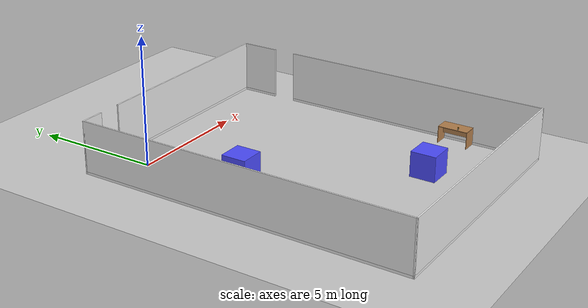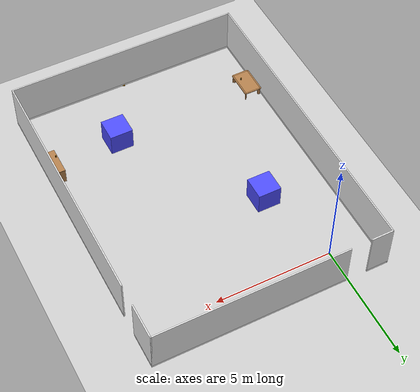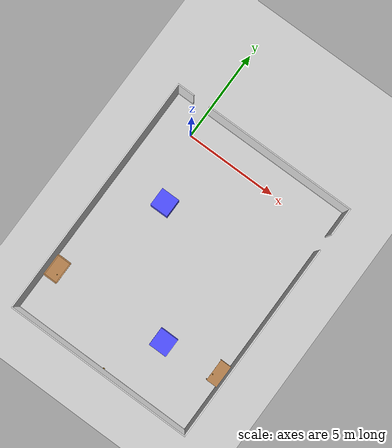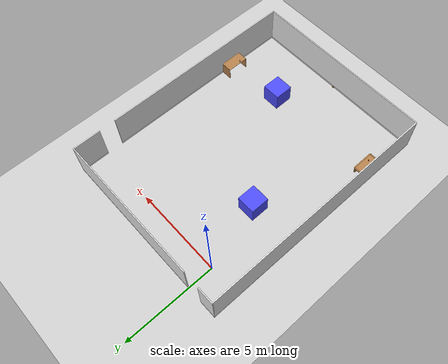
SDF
<sdf version="1.6">
 <world name="default">
  <model name="ground_plane">
   <static>1</static>
   <link name="link">
    <collision name="collision">
     <geometry><plane><normal>0 0 1</normal><size>100 100</size></plane></geometry>
     <surface><friction><ode><mu>100</mu><mu2>50</mu2></ode></friction></surface>
    </collision>
    <visual name="visual">
     <cast_shadows>0</cast_shadows>
     <geometry><plane><normal>0 0 1</normal><size>100 100</size></plane></geometry>
     <material>
      <script><uri>file://media/materials/scripts/gazebo.material</uri><name>Gazebo/Grey</name></script>
     </material>
    </visual>
   </link>
  </model>
  <model name="full_outside_wall">
   <link name="link">
    <inertial>
     <mass>50</mass>
     <inertia><ixx>1</ixx><ixy>0</ixy><ixz>0</ixz><iyy>1</iyy><iyz>0</iyz><izz>1</izz></inertia>
    </inertial>
    <visual name="x00_13y00_bottom_frame">
     <pose>5.0375 -0.0275 0.05 0 -0 0</pose>
     <geometry><box><size>10.185 0.055 0.1</size></box></geometry>
     <material>
      <script><uri>model://base_materials/color/scripts</uri><name>hsr_color/white</name></script>
     </material>
    </visual>
    <collision name="x00_13y00_collision_bottom_frame">
     <pose>5.0375 -0.0275 0.05 0 -0 0</pose>
     <geometry><box><size>10.185 0.055 0.1</size></box></geometry>
    </collision>
    <visual name="wall_x00_13y00">
     <pose>5.0375 -0.0275 1.095 0 -0 0</pose>
     <geometry><box><size>10.185 0.055 1.99</size></box></geometry>
     <material>
      <script>
       <uri>model://base_materials/wall/scripts</uri>
       <uri>model://base_materials/wall/textures</uri>
       <name>wall/white_noise</name>
      </script>
     </material>
    </visual>
    <collision name="wall_x00_13y00">
     <pose>5.0375 -0.002 1.095 0 -0 0</pose>
     <geometry><box><size>10.08 0.055 1.99</size></box></geometry>
    </collision>
    <visual name="x00y00_15_bottom_frame">
     <pose>-0.0275 6.59 0.05 0 -0 0</pose>
     <geometry><box><size>0.055 13.29 0.1</size></box></geometry>
     <material>
      <script><uri>model://base_materials/color/scripts</uri><name>hsr_color/white</name></script>
     </material>
    </visual>
    <collision name="x00y00_15_collision_bottom_frame">
     <pose>-0.0275 6.59 0.05 0 -0 0</pose>
     <geometry><box><size>0.055 13.29 0.1</size></box></geometry>
    </collision>
    <visual name="wall_x00y00_15">
     <pose>-0.0275 6.59 1.095 0 -0 0</pose>
     <geometry><box><size>0.055 13.29 1.99</size></box></geometry>
     <material>
      <script>
       <uri>model://base_materials/wall/scripts</uri>
       <uri>model://base_materials/wall/textures</uri>
       <name>wall/white_noise</name>
      </script>
     </material>
    </visual>
    <collision name="wall_x00y00_x00y15">
     <pose>-0.002 6.59 1.095 0 -0 0</pose>
     <geometry><box><size>0.002 13.29 1.99</size></box></geometry>
    </collision>
    <visual name="x13y00_12_bottom_frame">
     <pose>10.1025 5.3725 0.05 0 -0 0</pose>
     <geometry><box><size>0.055 10.855 0.1</size></box></geometry>
     <material>
      <script><uri>model://base_materials/color/scripts</uri><name>hsr_color/white</name></script>
     </material>
    </visual>
    <collision name="x13y00_12_collision_bottom_frame">
     <pose>10.1025 5.3725 0.05 0 -0 0</pose>
     <geometry><box><size>0.055 10.855 0.1</size></box></geometry>
    </collision>
    <visual name="wall_x13y00_12">
     <pose>10.1025 5.3725 1.095 0 -0 0</pose>
     <geometry><box><size>0.055 10.855 1.99</size></box></geometry>
     <material>
      <script>
       <uri>model://base_materials/wall/scripts</uri>
       <uri>model://base_materials/wall/textures</uri>
       <name>wall/white_noise</name>
      </script>
     </material>
    </visual>
    <collision name="wall_x13y00_12">
     <pose>10.1025 5.3725 1.095 0 -0 0</pose>
     <geometry><box><size>0.055 10.855 1.99</size></box></geometry>
    </collision>
    <visual name="x13y14_16_bottom_frame">
     <pose>10.1025 12.4675 0.05 0 -0 0</pose>
     <geometry><box><size>0.055 1.535 0.1</size></box></geometry>
     <material>
      <script><uri>model://base_materials/color/scripts</uri><name>hsr_color/white</name></script>
     </material>
    </visual>
    <collision name="x13y14_16_collision_bottom_frame">
     <pose>10.1025 12.4675 0.05 0 -0 0</pose>
     <geometry><box><size>0.055 1.535 0.1</size></box></geometry>
    </collision>
    <visual name="wall_x13y14_x13y16">
     <pose>10.1025 12.4675 1.095 0 -0 0</pose>
     <geometry><box><size>0.055 1.535 1.99</size></box></geometry>
     <material>
      <script>
       <uri>model://base_materials/wall/scripts</uri>
       <uri>model://base_materials/wall/textures</uri>
       <name>wall/white_noise</name>
      </script>
     </material>
    </visual>
    <collision name="wall_x13y14_x13y16">
     <pose>10.1025 12.4675 1.095 0 -0 0</pose>
     <geometry><box><size>0.055 1.535 1.99</size></box></geometry>
    </collision>
    <visual name="x00_01y16_bottom_frame">
     <pose>0.4225 13.2075 0.05 0 -0 0</pose>
     <geometry><box><size>0.955 0.055 0.1</size></box></geometry>
     <material>
      <script><uri>model://base_materials/color/scripts</uri><name>hsr_color/white</name></script>
     </material>
    </visual>
    <collision name="x00_01y16_collision_bottom_frame">
     <pose>0.4225 13.2075 0.05 0 -0 0</pose>
     <geometry><box><size>0.955 0.055 0.1</size></box></geometry>
    </collision>
    <visual name="wall_x00_01y16">
     <pose>0.4225 13.2075 1.095 0 -0 0</pose>
     <geometry><box><size>0.955 0.055 1.99</size></box></geometry>
     <material>
      <script>
       <uri>model://base_materials/wall/scripts</uri>
       <uri>model://base_materials/wall/textures</uri>
       <name>wall/white_noise</name>
      </script>
     </material>
    </visual>
    <collision name="wall_x00_x01y16">
     <pose>0.4225 13.2075 1.095 0 -0 0</pose>
     <geometry><box><size>0.955 0.055 1.99</size></box></geometry>
    </collision>
    <visual name="x03_13y16_bottom_frame">
     <pose>5.965 13.2075 0.05 0 -0 0</pose>
     <geometry><box><size>8.33 0.05 0.1</size></box></geometry>
     <material>
      <script><uri>model://base_materials/color/scripts</uri><name>hsr_color/white</name></script>
     </material>
    </visual>
    <collision name="x03_13y16_collision_bottom_frame">
     <pose>5.965 13.2075 0.05 0 -0 0</pose>
     <geometry><box><size>8.33 0.05 0.1</size></box></geometry>
    </collision>
    <visual name="wall_x03_13y16">
     <pose>5.965 13.2075 1.095 0 -0 0</pose>
     <geometry><box><size>8.33 0.055 1.99</size></box></geometry>
     <material>
      <script>
       <uri>model://base_materials/wall/scripts</uri>
       <uri>model://base_materials/wall/textures</uri>
       <name>wall/white_noise</name>
      </script>
     </material>
    </visual>
    <collision name="wall_x03_13y16">
     <pose>5.965 13.2075 1.095 0 -0 0</pose>
     <geometry><box><size>8.33 0.055 1.99</size></box></geometry>
    </collision>
    <velocity_decay><linear>0</linear><angular>0</angular></velocity_decay>
   </link>
   <static>1</static>
   <pose>-1.74055 -11.8334 0 0 -0 0</pose>
  </model>
  <model name="static_box_3">
   <link name="link">
    <inertial>
     <mass>100</mass>
     <inertia>
      <ixx>0.166667</ixx>
      <ixy>0</ixy>
      <ixz>0</ixz>
      <iyy>0.166667</iyy>
      <iyz>0</iyz>
      <izz>0.166667</izz>
     </inertia>
    </inertial>
    <visual name="visual">
     <geometry><box><size>1 1 1</size></box></geometry>
     <material>
      <script><name>Gazebo/Grey</name><uri>file://media/materials/scripts/gazebo.material</uri></script>
      <ambient>0.3 0.3 1 1</ambient>
      <diffuse>0.7 0.7 0.7 1</diffuse>
      <specular>0.01 0.01 0.01 1</specular>
      <emissive>0 0 0 1</emissive>
      <shader type="vertex"><normal_map>__default__</normal_map></shader>
     </material>
    </visual>
    <collision name="collision">
     <geometry><box><size>1 1 1</size></box></geometry>
     <surface>
      <friction>
       <ode><mu>1</mu><mu2>1</mu2><fdir1>0 0 0</fdir1><slip1>0</slip1><slip2>0</slip2></ode>
       <torsional>
        <coefficient>1</coefficient>
        <patch_radius>0</patch_radius>
        <surface_radius>0</surface_radius>
        <use_patch_radius>1</use_patch_radius>
        <ode><slip>0</slip></ode>
       </torsional>
      </friction>
      <bounce><restitution_coefficient>0</restitution_coefficient><threshold>1e+06</threshold></bounce>
      <contact>
       <collide_without_contact>0</collide_without_contact>
       <collide_without_contact_bitmask>1</collide_without_contact_bitmask>
       <collide_bitmask>1</collide_bitmask>
       <ode>
        <soft_cfm>0</soft_cfm>
        <soft_erp>0.2</soft_erp>
        <kp>1e+13</kp>
        <kd>1</kd>
        <max_vel>0.01</max_vel>
        <min_depth>0</min_depth>
       </ode>
       <bullet>
        <split_impulse>1</split_impulse>
        <split_impulse_penetration_threshold>-0.01</split_impulse_penetration_threshold>
        <soft_cfm>0</soft_cfm>
        <soft_erp>0.2</soft_erp>
        <kp>1e+13</kp>
        <kd>1</kd>
       </bullet>
      </contact>
     </surface>
    </collision>
   </link>
   <static>0</static>
   <pose>1.00497 -3.51707 0.499996 -5e-06 -6e-06 0.0017</pose>
  </model>
  <model name="static_box_4">
   <link name="link">
    <inertial>
     <mass>100</mass>
     <inertia>
      <ixx>0.166667</ixx>
      <ixy>0</ixy>
      <ixz>0</ixz>
      <iyy>0.166667</iyy>
      <iyz>0</iyz>
      <izz>0.166667</izz>
     </inertia>
    </inertial>
    <visual name="visual">
     <geometry><box><size>1 1 1</size></box></geometry>
     <material>
      <script><name>Gazebo/Grey</name><uri>file://media/materials/scripts/gazebo.material</uri></script>
      <ambient>0.3 0.3 1 1</ambient>
      <diffuse>0.7 0.7 0.7 1</diffuse>
      <specular>0.01 0.01 0.01 1</specular>
      <emissive>0 0 0 1</emissive>
      <shader type="vertex"><normal_map>__default__</normal_map></shader>
     </material>
    </visual>
    <collision name="collision">
     <geometry><box><size>1 1 1</size></box></geometry>
     <surface>
      <friction>
       <ode><mu>1</mu><mu2>1</mu2><fdir1>0 0 0</fdir1><slip1>0</slip1><slip2>0</slip2></ode>
       <torsional>
        <coefficient>1</coefficient>
        <patch_radius>0</patch_radius>
        <surface_radius>0</surface_radius>
        <use_patch_radius>1</use_patch_radius>
        <ode><slip>0</slip></ode>
       </torsional>
      </friction>
      <bounce><restitution_coefficient>0</restitution_coefficient><threshold>1e+06</threshold></bounce>
      <contact>
       <collide_without_contact>0</collide_without_contact>
       <collide_without_contact_bitmask>1</collide_without_contact_bitmask>
       <collide_bitmask>1</collide_bitmask>
       <ode>
        <soft_cfm>0</soft_cfm>
        <soft_erp>0.2</soft_erp>
        <kp>1e+13</kp>
        <kd>1</kd>
        <max_vel>0.01</max_vel>
        <min_depth>0</min_depth>
       </ode>
       <bullet>
        <split_impulse>1</split_impulse>
        <split_impulse_penetration_threshold>-0.01</split_impulse_penetration_threshold>
        <soft_cfm>0</soft_cfm>
        <soft_erp>0.2</soft_erp>
        <kp>1e+13</kp>
        <kd>1</kd>
       </bullet>
      </contact>
     </surface>
    </collision>
   </link>
   <static>0</static>
   <pose>4.98871 -8.99637 0.499993 -4e-06 1e-05 0.001363</pose>
  </model>
  <model name="office_desk">
   <link name="link">
    <inertial>
     <mass>10</mass>
     <inertia><ixx>1</ixx><ixy>0</ixy><ixz>0</ixz><iyy>1</iyy><iyz>0</iyz><izz>1</izz></inertia>
    </inertial>
    <visual name="top_board">
     <pose>-0.3 0.6 0.69 0 -0 0</pose>
     <geometry><box><size>0.6 1.2 0.02</size></box></geometry>
     <material>
      <script>
       <uri>model://base_materials/wood/scripts/wood.material</uri>
       <name>base_materials/dark_wood</name>
      </script>
     </material>
    </visual>
    <collision name="collision_top_board">
     <pose>-0.3 0.6 0.69 0 -0 0</pose>
     <geometry><box><size>0.6 1.2 0.02</size></box></geometry>
    </collision>
    <visual name="left_board">
     <pose>-0.3 0.01 0.34 0 -0 0</pose>
     <geometry><box><size>0.6 0.02 0.68</size></box></geometry>
     <material>
      <script>
       <uri>model://base_materials/wood/scripts/wood.material</uri>
       <name>base_materials/dark_wood</name>
      </script>
     </material>
    </visual>
    <collision name="collision_left_board">
     <pose>-0.3 0.01 0.34 0 -0 0</pose>
     <geometry><box><size>0.6 0.02 0.68</size></box></geometry>
    </collision>
    <visual name="right_board">
     <pose>-0.3 1.19 0.34 0 -0 0</pose>
     <geometry><box><size>0.6 0.02 0.68</size></box></geometry>
     <material>
      <script>
       <uri>model://base_materials/wood/scripts/wood.material</uri>
       <name>base_materials/dark_wood</name>
      </script>
     </material>
    </visual>
    <collision name="collision_right_board">
     <pose>-0.3 1.19 0.34 0 -0 0</pose>
     <geometry><box><size>0.6 0.02 0.68</size></box></geometry>
    </collision>
    <visual name="center_board">
     <pose>-0.14 0.6 0.49 0 -0 0</pose>
     <geometry><box><size>0.02 1.16 0.4</size></box></geometry>
     <material>
      <script>
       <uri>model://base_materials/wood/scripts/wood.material</uri>
       <name>base_materials/dark_wood</name>
      </script>
     </material>
    </visual>
    <collision name="ollision_center_board">
     <pose>-0.14 0.6 0.49 0 -0 0</pose>
     <geometry><box><size>0.02 1.16 0.4</size></box></geometry>
    </collision>
    <velocity_decay><linear>0</linear><angular>0</angular></velocity_decay>
   </link>
   <static>1</static>
   <pose>8.34403 -9.23136 0 0 -0 0</pose>
  </model>
  <model name="bottle_clone_0">
   <link name="link">
    <inertial>
     <mass>0.05</mass>
     <inertia><ixx>0.00058</ixx><ixy>0</ixy><ixz>0</ixz><iyy>0.00058</iyy><iyz>0</iyz><izz>0.00016</izz></inertia>
    </inertial>
    <visual name="top">
     <pose>0 0 0.0555 0 -0 0</pose>
     <geometry><cylinder><radius>0.019</radius><length>0.016</length></cylinder></geometry>
     <material>
      <ambient>1 0.647 0 1</ambient>
      <diffuse>0.5 0.3235 0 1</diffuse>
      <specular>0.1 0.1 0.1 1</specular>
      <emissive>0 0 0 0</emissive>
     </material>
    </visual>
    <collision name="collision_top">
     <pose>0 0 0.0555 0 -0 0</pose>
     <geometry><cylinder><radius>0.019</radius><length>0.016</length></cylinder></geometry>
     <surface>
      <bounce><restitution_coefficient>0.2</restitution_coefficient><threshold>0</threshold></bounce>
      <contact><ode><kp>10000</kp><max_vel>10</max_vel></ode></contact>
     </surface>
    </collision>
    <visual name="bottom">
     <geometry><cylinder><radius>0.0245</radius><length>0.095</length></cylinder></geometry>
     <material>
      <ambient>1 0.7 0.3 1</ambient>
      <diffuse>0.5 0.3235 0 1</diffuse>
      <specular>0.1 0.1 0.1 1</specular>
      <emissive>0 0 0 0</emissive>
     </material>
    </visual>
    <collision name="collision_bottom">
     <geometry><cylinder><radius>0.0245</radius><length>0.095</length></cylinder></geometry>
     <surface>
      <bounce><restitution_coefficient>0.2</restitution_coefficient><threshold>0</threshold></bounce>
      <contact><ode><kp>100000</kp><max_vel>10</max_vel></ode></contact>
     </surface>
    </collision>
    <velocity_decay><linear>0</linear><angular>0</angular></velocity_decay>
    <visual name="marker_4000">
     <pose>0.0245 0 0 0 1.57 3.141</pose>
     <geometry><box><size>0.045 0.045 0.0001</size></box></geometry>
     <material>
      <script>
       <uri>model://marker/4000/scripts</uri>
       <uri>model://marker/4000/textures</uri>
       <name>Marker/4000</name>
      </script>
     </material>
    </visual>
   </link>
   <static>0</static>
   <pose>7.81942 -8.83237 0.7475 2e-06 -7e-06 3.05069</pose>
  </model>
  <model name="bottle_clone_1">
   <link name="link">
    <inertial>
     <mass>0.05</mass>
     <inertia><ixx>0.00058</ixx><ixy>0</ixy><ixz>0</ixz><iyy>0.00058</iyy><iyz>0</iyz><izz>0.00016</izz></inertia>
    </inertial>
    <visual name="top">
     <pose>0 0 0.0555 0 -0 0</pose>
     <geometry><cylinder><radius>0.019</radius><length>0.016</length></cylinder></geometry>
     <material>
      <ambient>1 0.647 0 1</ambient>
      <diffuse>0.5 0.3235 0 1</diffuse>
      <specular>0.1 0.1 0.1 1</specular>
      <emissive>0 0 0 0</emissive>
     </material>
    </visual>
    <collision name="collision_top">
     <pose>0 0 0.0555 0 -0 0</pose>
     <geometry><cylinder><radius>0.019</radius><length>0.016</length></cylinder></geometry>
     <surface>
      <bounce><restitution_coefficient>0.2</restitution_coefficient><threshold>0</threshold></bounce>
      <contact><ode><kp>10000</kp><max_vel>10</max_vel></ode></contact>
     </surface>
    </collision>
    <visual name="bottom">
     <geometry><cylinder><radius>0.0245</radius><length>0.095</length></cylinder></geometry>
     <material>
      <ambient>1 0.7 0.3 1</ambient>
      <diffuse>0.5 0.3235 0 1</diffuse>
      <specular>0.1 0.1 0.1 1</specular>
      <emissive>0 0 0 0</emissive>
     </material>
    </visual>
    <collision name="collision_bottom">
     <geometry><cylinder><radius>0.0245</radius><length>0.095</length></cylinder></geometry>
     <surface>
      <bounce><restitution_coefficient>0.2</restitution_coefficient><threshold>0</threshold></bounce>
      <contact><ode><kp>100000</kp><max_vel>10</max_vel></ode></contact>
     </surface>
    </collision>
    <velocity_decay><linear>0</linear><angular>0</angular></velocity_decay>
    <visual name="marker_4000">
     <pose>0.0245 0 0 0 1.57 3.141</pose>
     <geometry><box><size>0.045 0.045 0.0001</size></box></geometry>
     <material>
      <script>
       <uri>model://marker/4000/scripts</uri>
       <uri>model://marker/4000/textures</uri>
       <name>Marker/4000</name>
      </script>
     </material>
    </visual>
   </link>
   <static>0</static>
   <pose>3.40355 -11.8063 0.024498 1.5708 1.51038 1.52608</pose>
  </model>
  <model name="kitchen_lowtable">
   <link name="link">
    <inertial>
     <mass>10</mass>
     <inertia><ixx>1</ixx><ixy>0</ixy><ixz>0</ixz><iyy>1</iyy><iyz>0</iyz><izz>1</izz></inertia>
    </inertial>
    <visual name="center_board">
     <pose>0 0 0.38 0 -0 0</pose>
     <geometry><box><size>0.68 1.13 0.04</size></box></geometry>
     <material>
      <script><uri>model://base_materials/wood/scripts/wood.material</uri><name>base_materials/wood</name></script>
     </material>
    </visual>
    <collision name="collision_center_board">
     <pose>0 0 0.38 0 -0 0</pose>
     <geometry><box><size>0.68 1.13 0.04</size></box></geometry>
    </collision>
    <visual name="front_board">
     <pose>0.37 0 0.38 0 -0 0</pose>
     <geometry><box><size>0.06 1.13 0.04</size></box></geometry>
     <material>
      <script><uri>model://base_materials/wood/scripts/wood.material</uri><name>base_materials/wood</name></script>
     </material>
    </visual>
    <collision name="collision_front_board">
     <pose>0.37 0 0.38 0 -0 0</pose>
     <geometry><box><size>0.06 1.13 0.04</size></box></geometry>
    </collision>
    <visual name="back_board">
     <pose>-0.37 0 0.38 0 -0 0</pose>
     <geometry><box><size>0.06 1.13 0.04</size></box></geometry>
     <material>
      <script><uri>model://base_materials/wood/scripts/wood.material</uri><name>base_materials/wood</name></script>
     </material>
    </visual>
    <collision name="collision_back_board">
     <pose>-0.37 0 0.38 0 -0 0</pose>
     <geometry><box><size>0.06 1.13 0.04</size></box></geometry>
    </collision>
    <visual name="right_board">
     <pose>0 0.595 0.38 0 -0 0</pose>
     <geometry><box><size>0.68 0.06 0.04</size></box></geometry>
     <material>
      <script><uri>model://base_materials/wood/scripts/wood.material</uri><name>base_materials/wood</name></script>
     </material>
    </visual>
    <collision name="collision_right_board">
     <pose>0 0.595 0.38 0 -0 0</pose>
     <geometry><box><size>0.68 0.06 0.04</size></box></geometry>
    </collision>
    <visual name="left_board">
     <pose>0 -0.595 0.38 0 -0 0</pose>
     <geometry><box><size>0.68 0.06 0.04</size></box></geometry>
     <material>
      <script><uri>model://base_materials/wood/scripts/wood.material</uri><name>base_materials/wood</name></script>
     </material>
    </visual>
    <collision name="collision_left_board">
     <pose>0 -0.595 0.38 0 -0 0</pose>
     <geometry><box><size>0.68 0.06 0.04</size></box></geometry>
    </collision>
    <visual name="front_right_corner_board">
     <pose>0.34 0.565 0.38 0 -0 0</pose>
     <geometry><cylinder><radius>0.06</radius><length>0.039</length></cylinder></geometry>
     <material>
      <script><uri>model://base_materials/wood/scripts/wood.material</uri><name>base_materials/wood</name></script>
     </material>
    </visual>
    <collision name="collision_front_right_corner_board">
     <pose>0.34 0.565 0.38 0 -0 0</pose>
     <geometry><cylinder><radius>0.06</radius><length>0.039</length></cylinder></geometry>
    </collision>
    <visual name="front_left_corner_board">
     <pose>0.34 -0.565 0.38 0 -0 0</pose>
     <geometry><cylinder><radius>0.06</radius><length>0.039</length></cylinder></geometry>
     <material>
      <script><uri>model://base_materials/wood/scripts/wood.material</uri><name>base_materials/wood</name></script>
     </material>
    </visual>
    <collision name="collision_front_left_corner_board">
     <pose>0.34 -0.565 0.38 0 -0 0</pose>
     <geometry><cylinder><radius>0.06</radius><length>0.039</length></cylinder></geometry>
    </collision>
    <visual name="front_back_right_corner_board">
     <pose>-0.34 0.565 0.38 0 -0 0</pose>
     <geometry><cylinder><radius>0.06</radius><length>0.039</length></cylinder></geometry>
     <material>
      <script><uri>model://base_materials/wood/scripts/wood.material</uri><name>base_materials/wood</name></script>
     </material>
    </visual>
    <collision name="collision_back_right_corner_board">
     <pose>-0.34 0.565 0.38 0 -0 0</pose>
     <geometry><cylinder><radius>0.06</radius><length>0.039</length></cylinder></geometry>
    </collision>
    <visual name="front_back_left_corner_board">
     <pose>-0.34 -0.565 0.38 0 -0 0</pose>
     <geometry><cylinder><radius>0.06</radius><length>0.039</length></cylinder></geometry>
     <material>
      <script><uri>model://base_materials/wood/scripts/wood.material</uri><name>base_materials/wood</name></script>
     </material>
    </visual>
    <collision name="collision_back_left_corner_board">
     <pose>-0.34 -0.565 0.38 0 -0 0</pose>
     <geometry><cylinder><radius>0.06</radius><length>0.039</length></cylinder></geometry>
    </collision>
    <visual name="front_left_corner_frame1">
     <pose>0.345858 -0.57086 0.18 0 -0 0</pose>
     <geometry><cylinder><radius>0.02</radius><length>0.36</length></cylinder></geometry>
     <material>
      <script><uri>model://base_materials/wood/scripts/wood.material</uri><name>base_materials/wood</name></script>
     </material>
    </visual>
    <collision name="collision_front_left_corner_frame1">
     <pose>0.345858 -0.57086 0.18 0 -0 0</pose>
     <geometry><cylinder><radius>0.02</radius><length>0.36</length></cylinder></geometry>
    </collision>
    <visual name="front_left_corner_frame2">
     <pose>0.317574 -0.54257 0.18 0 -0 0.7854</pose>
     <geometry><box><size>0.04 0.08 0.36</size></box></geometry>
     <material>
      <script><uri>model://base_materials/wood/scripts/wood.material</uri><name>base_materials/wood</name></script>
     </material>
    </visual>
    <collision name="collision_front_left_corner_frame2">
     <pose>0.317574 -0.54257 0.18 0 -0 0.7854</pose>
     <geometry><box><size>0.04 0.08 0.36</size></box></geometry>
    </collision>
    <visual name="front_left_corner_frame3">
     <pose>0.289289 -0.51429 0.18 0 -0 0</pose>
     <geometry><cylinder><radius>0.02</radius><length>0.36</length></cylinder></geometry>
     <material>
      <script><uri>model://base_materials/wood/scripts/wood.material</uri><name>base_materials/wood</name></script>
     </material>
    </visual>
    <collision name="collision_front_left_corner_frame3">
     <pose>0.289289 -0.51429 0.18 0 -0 0</pose>
     <geometry><cylinder><radius>0.02</radius><length>0.36</length></cylinder></geometry>
    </collision>
    <visual name="front_right_corner_frame1">
     <pose>0.345858 0.57086 0.18 0 -0 0</pose>
     <geometry><cylinder><radius>0.02</radius><length>0.36</length></cylinder></geometry>
     <material>
      <script><uri>model://base_materials/wood/scripts/wood.material</uri><name>base_materials/wood</name></script>
     </material>
    </visual>
    <collision name="collision_front_right_corner_frame1">
     <pose>0.345858 0.57086 0.18 0 -0 0</pose>
     <geometry><cylinder><radius>0.02</radius><length>0.36</length></cylinder></geometry>
    </collision>
    <visual name="front_right_corner_frame2">
     <pose>0.317574 0.54257 0.18 0 0 -0.7854</pose>
     <geometry><box><size>0.04 0.08 0.36</size></box></geometry>
     <material>
      <script><uri>model://base_materials/wood/scripts/wood.material</uri><name>base_materials/wood</name></script>
     </material>
    </visual>
    <collision name="collision_front_right_corner_frame2">
     <pose>0.317574 0.54257 0.18 0 0 -0.7854</pose>
     <geometry><box><size>0.04 0.08 0.36</size></box></geometry>
    </collision>
    <visual name="front_right_corner_frame3">
     <pose>0.289289 0.51429 0.18 0 -0 0</pose>
     <geometry><cylinder><radius>0.02</radius><length>0.36</length></cylinder></geometry>
     <material>
      <script><uri>model://base_materials/wood/scripts/wood.material</uri><name>base_materials/wood</name></script>
     </material>
    </visual>
    <collision name="collision_front_right_corner_frame3">
     <pose>0.289289 0.51429 0.18 0 -0 0</pose>
     <geometry><cylinder><radius>0.02</radius><length>0.36</length></cylinder></geometry>
    </collision>
    <visual name="back_left_corner_frame1">
     <pose>-0.345858 -0.57086 0.18 0 -0 0</pose>
     <geometry><cylinder><radius>0.02</radius><length>0.36</length></cylinder></geometry>
     <material>
      <script><uri>model://base_materials/wood/scripts/wood.material</uri><name>base_materials/wood</name></script>
     </material>
    </visual>
    <collision name="collision_back_left_corner_frame1">
     <pose>-0.345858 -0.57086 0.18 0 -0 0</pose>
     <geometry><cylinder><radius>0.02</radius><length>0.36</length></cylinder></geometry>
    </collision>
    <visual name="back_left_corner_frame2">
     <pose>-0.317574 -0.54257 0.18 0 0 -0.7854</pose>
     <geometry><box><size>0.04 0.08 0.36</size></box></geometry>
     <material>
      <script><uri>model://base_materials/wood/scripts/wood.material</uri><name>base_materials/wood</name></script>
     </material>
    </visual>
    <collision name="collision_back_left_corner_frame2">
     <pose>-0.317574 -0.54257 0.18 0 0 -0.7854</pose>
     <geometry><box><size>0.04 0.08 0.36</size></box></geometry>
    </collision>
    <visual name="back_left_corner_frame3">
     <pose>-0.289289 -0.51429 0.18 0 -0 0</pose>
     <geometry><cylinder><radius>0.02</radius><length>0.36</length></cylinder></geometry>
     <material>
      <script><uri>model://base_materials/wood/scripts/wood.material</uri><name>base_materials/wood</name></script>
     </material>
    </visual>
    <collision name="collision_back_left_corner_frame3">
     <pose>-0.289289 -0.51429 0.18 0 -0 0</pose>
     <geometry><cylinder><radius>0.02</radius><length>0.36</length></cylinder></geometry>
    </collision>
    <visual name="back_right_corner_frame1">
     <pose>-0.345858 0.57086 0.18 0 -0 0</pose>
     <geometry><cylinder><radius>0.02</radius><length>0.36</length></cylinder></geometry>
     <material>
      <script><uri>model://base_materials/wood/scripts/wood.material</uri><name>base_materials/wood</name></script>
     </material>
    </visual>
    <collision name="collision_back_right_corner_frame1">
     <pose>-0.345858 0.57086 0.18 0 -0 0</pose>
     <geometry><cylinder><radius>0.02</radius><length>0.36</length></cylinder></geometry>
    </collision>
    <visual name="back_right_corner_frame2">
     <pose>-0.317574 0.54257 0.18 0 -0 0.7854</pose>
     <geometry><box><size>0.04 0.08 0.36</size></box></geometry>
     <material>
      <script><uri>model://base_materials/wood/scripts/wood.material</uri><name>base_materials/wood</name></script>
     </material>
    </visual>
    <collision name="collision_back_right_corner_frame2">
     <pose>-0.317574 0.54257 0.18 0 -0 0.7854</pose>
     <geometry><box><size>0.04 0.08 0.36</size></box></geometry>
    </collision>
    <visual name="back_right_corner_frame3">
     <pose>-0.289289 0.51429 0.18 0 -0 0</pose>
     <geometry><cylinder><radius>0.02</radius><length>0.36</length></cylinder></geometry>
     <material>
      <script><uri>model://base_materials/wood/scripts/wood.material</uri><name>base_materials/wood</name></script>
     </material>
    </visual>
    <collision name="collision_back_right_corner_frame3">
     <pose>-0.289289 0.51429 0.18 0 -0 0</pose>
     <geometry><cylinder><radius>0.02</radius><length>0.36</length></cylinder></geometry>
    </collision>
    <velocity_decay><linear>0</linear><angular>0</angular></velocity_decay>
   </link>
   <static>1</static>
   <pose>-1.32547 -9.24142 0 0 -0 0</pose>
  </model>
  <model name="bottle_clone_2">
   <link name="link">
    <inertial>
     <mass>0.05</mass>
     <inertia><ixx>0.00058</ixx><ixy>0</ixy><ixz>0</ixz><iyy>0.00058</iyy><iyz>0</iyz><izz>0.00016</izz></inertia>
    </inertial>
    <visual name="top">
     <pose>0 0 0.0555 0 -0 0</pose>
     <geometry><cylinder><radius>0.019</radius><length>0.016</length></cylinder></geometry>
     <material>
      <ambient>1 0.647 0 1</ambient>
      <diffuse>0.5 0.3235 0 1</diffuse>
      <specular>0.1 0.1 0.1 1</specular>
      <emissive>0 0 0 0</emissive>
     </material>
    </visual>
    <collision name="collision_top">
     <pose>0 0 0.0555 0 -0 0</pose>
     <geometry><cylinder><radius>0.019</radius><length>0.016</length></cylinder></geometry>
     <surface>
      <bounce><restitution_coefficient>0.2</restitution_coefficient><threshold>0</threshold></bounce>
      <contact><ode><kp>10000</kp><max_vel>10</max_vel></ode></contact>
     </surface>
    </collision>
    <visual name="bottom">
     <geometry><cylinder><radius>0.0245</radius><length>0.095</length></cylinder></geometry>
     <material>
      <ambient>1 0.7 0.3 1</ambient>
      <diffuse>0.5 0.3235 0 1</diffuse>
      <specular>0.1 0.1 0.1 1</specular>
      <emissive>0 0 0 0</emissive>
     </material>
    </visual>
    <collision name="collision_bottom">
     <geometry><cylinder><radius>0.0245</radius><length>0.095</length></cylinder></geometry>
     <surface>
      <bounce><restitution_coefficient>0.2</restitution_coefficient><threshold>0</threshold></bounce>
      <contact><ode><kp>100000</kp><max_vel>10</max_vel></ode></contact>
     </surface>
    </collision>
    <velocity_decay><linear>0</linear><angular>0</angular></velocity_decay>
    <visual name="marker_4000">
     <pose>0.0245 0 0 0 1.57 3.141</pose>
     <geometry><box><size>0.045 0.045 0.0001</size></box></geometry>
     <material>
      <script>
       <uri>model://marker/4000/scripts</uri>
       <uri>model://marker/4000/textures</uri>
       <name>Marker/4000</name>
      </script>
     </material>
    </visual>
   </link>
   <static>0</static>
   <pose>-1.16558 -9.46396 0.4475 -6e-06 -6e-06 0.03372</pose>
  </model>
 </world>
</sdf>
